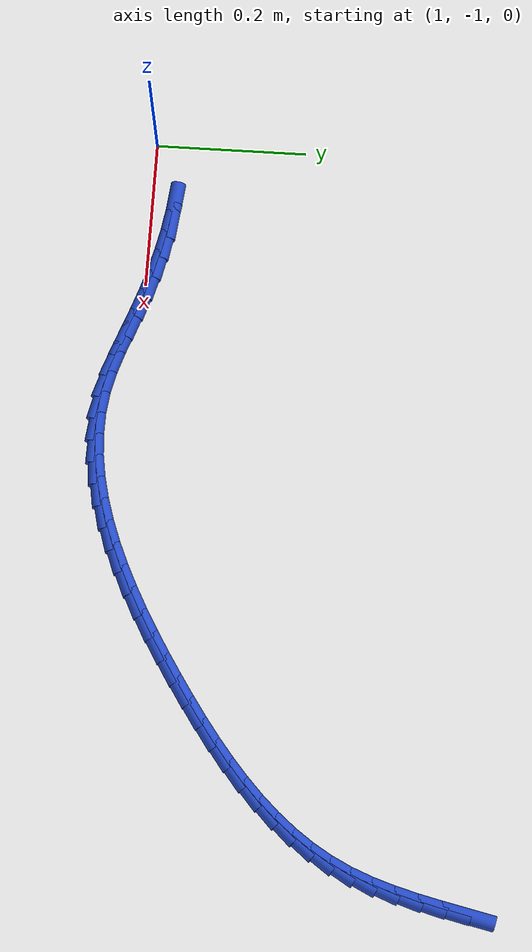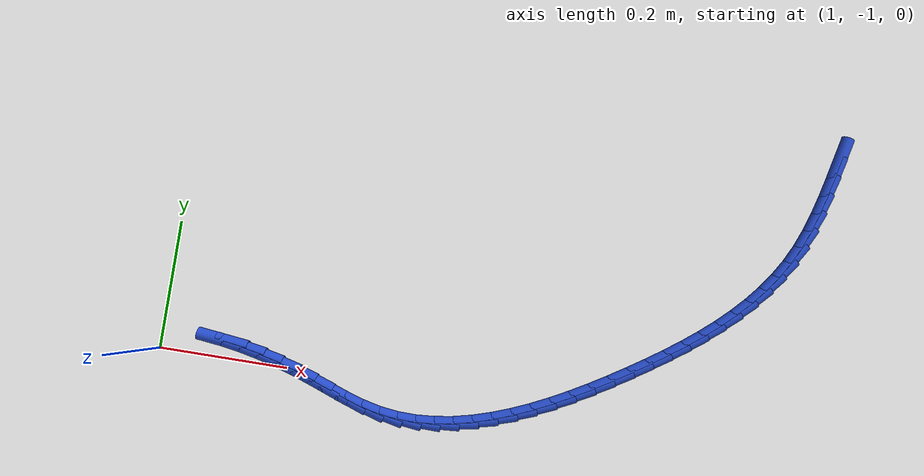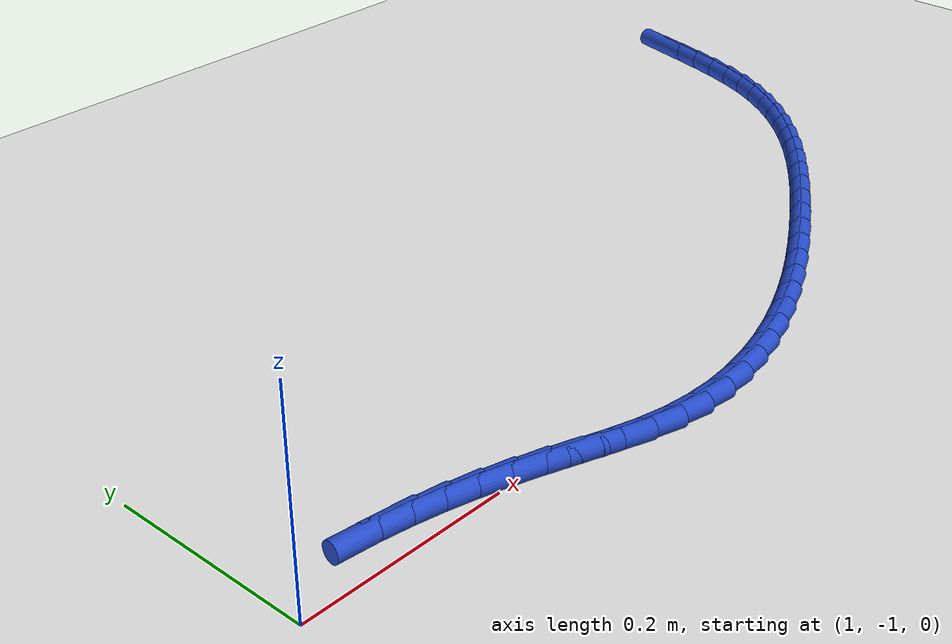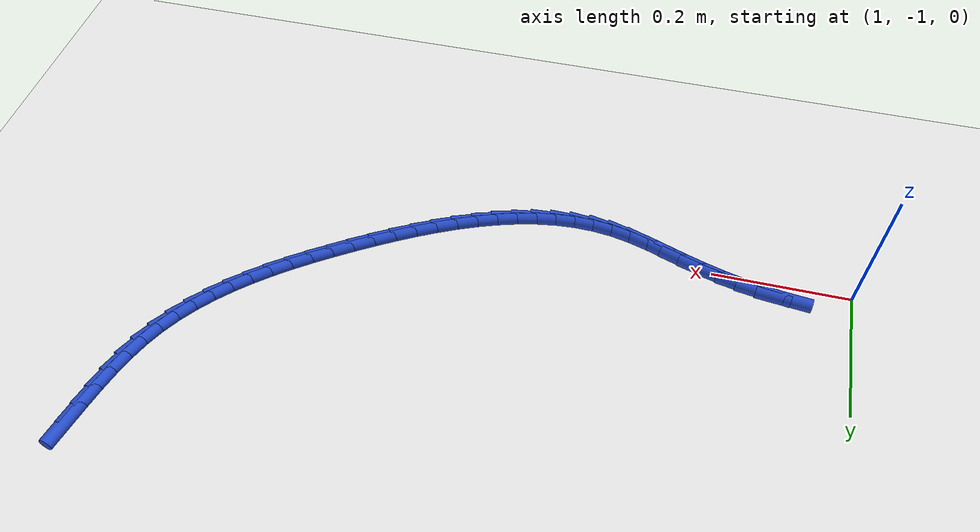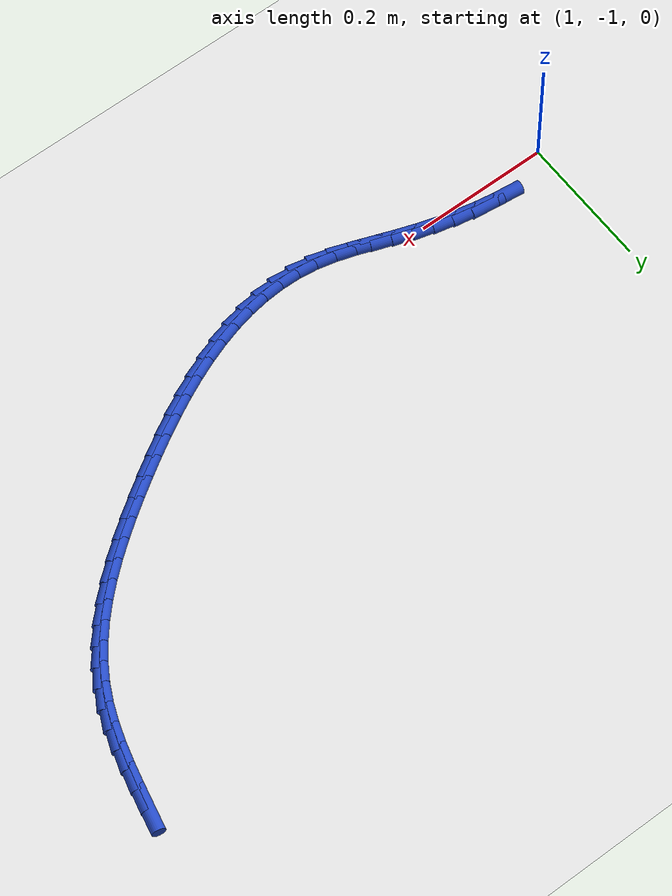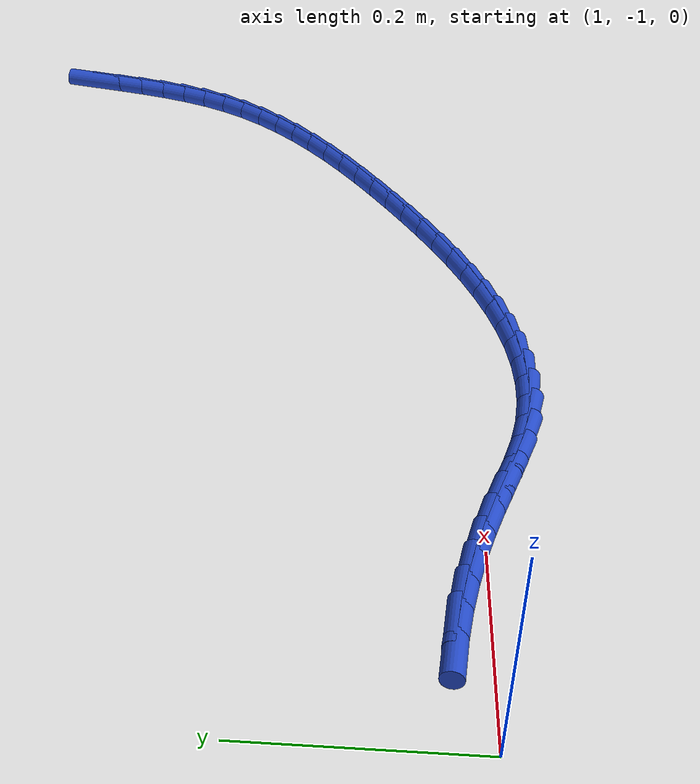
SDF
<sdf version="1.6">
 <world name="default">
  <model name="ground_plane">
   <static>1</static>
   <link name="link">
    <collision name="collision">
     <geometry><plane><normal>0 0 1</normal><size>100 100</size></plane></geometry>
     <surface><friction><ode><mu>100</mu><mu2>50</mu2></ode></friction></surface>
    </collision>
    <visual name="visual">
     <cast_shadows>0</cast_shadows>
     <geometry><plane><normal>0 0 1</normal><size>100 100</size></plane></geometry>
     <material>
      <script><uri>file://media/materials/scripts/gazebo.material</uri><name>Gazebo/WhiteGlow</name></script>
     </material>
    </visual>
   </link>
  </model>
  <model name="line">
   <link name="link_133">
    <pose>1.996887302667056 -0.5473693368653982 0.01 0 1.57 1.3559249489781986</pose>
    <collision name="collision">
     <geometry><cylinder><radius>0.01</radius><length>0.08</length></cylinder></geometry>
    </collision>
    <visual name="visual">
     <material>
      <script><name>Gazebo/Blue</name><uri>file://media/materials/scripts/gazebo.material</uri></script>
     </material>
     <geometry><cylinder><radius>0.01</radius><length>0.08</length></cylinder></geometry>
    </visual>
   </link>
   <link name="link_134">
    <pose>1.9903786573698856 -0.5771926119201558 0.01 0 1.57 1.3390633746473133</pose>
    <collision name="collision">
     <geometry><cylinder><radius>0.01</radius><length>0.08</length></cylinder></geometry>
    </collision>
    <visual name="visual">
     <material>
      <script><name>Gazebo/Blue</name><uri>file://media/materials/scripts/gazebo.material</uri></script>
     </material>
     <geometry><cylinder><radius>0.01</radius><length>0.08</length></cylinder></geometry>
    </visual>
   </link>
   <link name="link_135">
    <pose>1.983433303426066 -0.606625561824973 0.01 0 1.57 1.307035948301139</pose>
    <collision name="collision">
     <geometry><cylinder><radius>0.01</radius><length>0.08</length></cylinder></geometry>
    </collision>
    <visual name="visual">
     <material>
      <script><name>Gazebo/Blue</name><uri>file://media/materials/scripts/gazebo.material</uri></script>
     </material>
     <geometry><cylinder><radius>0.01</radius><length>0.08</length></cylinder></geometry>
    </visual>
   </link>
   <link name="link_136">
    <pose>1.9756438268588636 -0.6354699109005674 0.01 0 1.57 1.2590700978278235</pose>
    <collision name="collision">
     <geometry><cylinder><radius>0.01</radius><length>0.08</length></cylinder></geometry>
    </collision>
    <visual name="visual">
     <material>
      <script><name>Gazebo/Blue</name><uri>file://media/materials/scripts/gazebo.material</uri></script>
     </material>
     <geometry><cylinder><radius>0.01</radius><length>0.08</length></cylinder></geometry>
    </visual>
   </link>
   <link name="link_137">
    <pose>1.9666028136915439 -0.6635273834676595 0.01 0 1.57 1.194403321142609</pose>
    <collision name="collision">
     <geometry><cylinder><radius>0.01</radius><length>0.08</length></cylinder></geometry>
    </collision>
    <visual name="visual">
     <material>
      <script><name>Gazebo/Blue</name><uri>file://media/materials/scripts/gazebo.material</uri></script>
     </material>
     <geometry><cylinder><radius>0.01</radius><length>0.08</length></cylinder></geometry>
    </visual>
   </link>
   <link name="link_138">
    <pose>1.9559028499473745 -0.6905997038469692 0.01 0 1.57 1.1131258627821745</pose>
    <collision name="collision">
     <geometry><cylinder><radius>0.01</radius><length>0.08</length></cylinder></geometry>
    </collision>
    <visual name="visual">
     <material>
      <script><name>Gazebo/Blue</name><uri>file://media/materials/scripts/gazebo.material</uri></script>
     </material>
     <geometry><cylinder><radius>0.01</radius><length>0.08</length></cylinder></geometry>
    </visual>
   </link>
   <link name="link_139">
    <pose>1.9431483448114946 -0.7164945082401075 0.01 0 1.57 1.0265444536064772</pose>
    <collision name="collision">
     <geometry><cylinder><radius>0.01</radius><length>0.08</length></cylinder></geometry>
    </collision>
    <visual name="visual">
     <material>
      <script><name>Gazebo/Blue</name><uri>file://media/materials/scripts/gazebo.material</uri></script>
     </material>
     <geometry><cylinder><radius>0.01</radius><length>0.08</length></cylinder></geometry>
    </visual>
   </link>
   <link name="link_140">
    <pose>1.9282212717046536 -0.7411582220083184 0.01 0 1.57 0.9466905149157577</pose>
    <collision name="collision">
     <geometry><cylinder><radius>0.01</radius><length>0.08</length></cylinder></geometry>
    </collision>
    <visual name="visual">
     <material>
      <script><name>Gazebo/Blue</name><uri>file://media/materials/scripts/gazebo.material</uri></script>
     </material>
     <geometry><cylinder><radius>0.01</radius><length>0.08</length></cylinder></geometry>
    </visual>
   </link>
   <link name="link_141">
    <pose>1.9112843334248817 -0.7646776423236122 0.01 0 1.57 0.8747937491677347</pose>
    <collision name="collision">
     <geometry><cylinder><radius>0.01</radius><length>0.08</length></cylinder></geometry>
    </collision>
    <visual name="visual">
     <material>
      <script><name>Gazebo/Blue</name><uri>file://media/materials/scripts/gazebo.material</uri></script>
     </material>
     <geometry><cylinder><radius>0.01</radius><length>0.08</length></cylinder></geometry>
    </visual>
   </link>
   <link name="link_142">
    <pose>1.892512688985931 -0.7871457947818775 0.01 0 1.57 0.8111123387554712</pose>
    <collision name="collision">
     <geometry><cylinder><radius>0.01</radius><length>0.08</length></cylinder></geometry>
    </collision>
    <visual name="visual">
     <material>
      <script><name>Gazebo/Blue</name><uri>file://media/materials/scripts/gazebo.material</uri></script>
     </material>
     <geometry><cylinder><radius>0.01</radius><length>0.08</length></cylinder></geometry>
    </visual>
   </link>
   <link name="link_143">
    <pose>1.872081497401553 -0.8086557049790024 0.01 0 1.57 0.7555461781573906</pose>
    <collision name="collision">
     <geometry><cylinder><radius>0.01</radius><length>0.08</length></cylinder></geometry>
    </collision>
    <visual name="visual">
     <material>
      <script><name>Gazebo/Blue</name><uri>file://media/materials/scripts/gazebo.material</uri></script>
     </material>
     <geometry><cylinder><radius>0.01</radius><length>0.08</length></cylinder></geometry>
    </visual>
   </link>
   <link name="link_144">
    <pose>1.8501659176855019 -0.8293003985108759 0.01 0 1.57 0.7077698907338495</pose>
    <collision name="collision">
     <geometry><cylinder><radius>0.01</radius><length>0.08</length></cylinder></geometry>
    </collision>
    <visual name="visual">
     <material>
      <script><name>Gazebo/Blue</name><uri>file://media/materials/scripts/gazebo.material</uri></script>
     </material>
     <geometry><cylinder><radius>0.01</radius><length>0.08</length></cylinder></geometry>
    </visual>
   </link>
   <link name="link_145">
    <pose>1.8269411088515302 -0.849172900973385 0.01 0 1.57 0.6673439501519992</pose>
    <collision name="collision">
     <geometry><cylinder><radius>0.01</radius><length>0.08</length></cylinder></geometry>
    </collision>
    <visual name="visual">
     <material>
      <script><name>Gazebo/Blue</name><uri>file://media/materials/scripts/gazebo.material</uri></script>
     </material>
     <geometry><cylinder><radius>0.01</radius><length>0.08</length></cylinder></geometry>
    </visual>
   </link>
   <link name="link_146">
    <pose>1.8025822299133905 -0.868366237962419 0.01 0 1.57 0.6337964358311029</pose>
    <collision name="collision">
     <geometry><cylinder><radius>0.01</radius><length>0.08</length></cylinder></geometry>
    </collision>
    <visual name="visual">
     <material>
      <script><name>Gazebo/Blue</name><uri>file://media/materials/scripts/gazebo.material</uri></script>
     </material>
     <geometry><cylinder><radius>0.01</radius><length>0.08</length></cylinder></geometry>
    </visual>
   </link>
   <link name="link_147">
    <pose>1.7772644398848347 -0.8869734350738653 0.01 0 1.57 0.606677740603329</pose>
    <collision name="collision">
     <geometry><cylinder><radius>0.01</radius><length>0.08</length></cylinder></geometry>
    </collision>
    <visual name="visual">
     <material>
      <script><name>Gazebo/Blue</name><uri>file://media/materials/scripts/gazebo.material</uri></script>
     </material>
     <geometry><cylinder><radius>0.01</radius><length>0.08</length></cylinder></geometry>
    </visual>
   </link>
   <link name="link_148">
    <pose>1.751162897779616 -0.905087517903613 0.01 0 1.57 0.585589226687748</pose>
    <collision name="collision">
     <geometry><cylinder><radius>0.01</radius><length>0.08</length></cylinder></geometry>
    </collision>
    <visual name="visual">
     <material>
      <script><name>Gazebo/Blue</name><uri>file://media/materials/scripts/gazebo.material</uri></script>
     </material>
     <geometry><cylinder><radius>0.01</radius><length>0.08</length></cylinder></geometry>
    </visual>
   </link>
   <link name="link_149">
    <pose>1.7244526977620882 -0.9228013558451146 0.01 0 1.57 0.5677064494471903</pose>
    <collision name="collision">
     <geometry><cylinder><radius>0.01</radius><length>0.08</length></cylinder></geometry>
    </collision>
    <visual name="visual">
     <material>
      <script><name>Gazebo/Blue</name><uri>file://media/materials/scripts/gazebo.material</uri></script>
     </material>
     <geometry><cylinder><radius>0.01</radius><length>0.08</length></cylinder></geometry>
    </visual>
   </link>
   <link name="link_150">
    <pose>1.697277465241202 -0.9401320196519082 0.01 0 1.57 0.5462620800932706</pose>
    <collision name="collision">
     <geometry><cylinder><radius>0.01</radius><length>0.08</length></cylinder></geometry>
    </collision>
    <visual name="visual">
     <material>
      <script><name>Gazebo/Blue</name><uri>file://media/materials/scripts/gazebo.material</uri></script>
     </material>
     <geometry><cylinder><radius>0.01</radius><length>0.08</length></cylinder></geometry>
    </visual>
   </link>
   <link name="link_151">
    <pose>1.6696988412418157 -0.9568991046855543 0.01 0 1.57 0.519936955312195</pose>
    <collision name="collision">
     <geometry><cylinder><radius>0.01</radius><length>0.08</length></cylinder></geometry>
    </collision>
    <visual name="visual">
     <material>
      <script><name>Gazebo/Blue</name><uri>file://media/materials/scripts/gazebo.material</uri></script>
     </material>
     <geometry><cylinder><radius>0.01</radius><length>0.08</length></cylinder></geometry>
    </visual>
   </link>
   <link name="link_152">
    <pose>1.6417652846896187 -0.9728904546486943 0.01 0 1.57 0.48835998106023915</pose>
    <collision name="collision">
     <geometry><cylinder><radius>0.01</radius><length>0.08</length></cylinder></geometry>
    </collision>
    <visual name="visual">
     <material>
      <script><name>Gazebo/Blue</name><uri>file://media/materials/scripts/gazebo.material</uri></script>
     </material>
     <geometry><cylinder><radius>0.01</radius><length>0.08</length></cylinder></geometry>
    </visual>
   </link>
   <link name="link_153">
    <pose>1.6135252545103007 -0.987893913243971 0.01 0 1.57 0.4510602892768816</pose>
    <collision name="collision">
     <geometry><cylinder><radius>0.01</radius><length>0.08</length></cylinder></geometry>
    </collision>
    <visual name="visual">
     <material>
      <script><name>Gazebo/Blue</name><uri>file://media/materials/scripts/gazebo.material</uri></script>
     </material>
     <geometry><cylinder><radius>0.01</radius><length>0.08</length></cylinder></geometry>
    </visual>
   </link>
   <link name="link_154">
    <pose>1.5850272096295535 -1.0016973241740257 0.01 0 1.57 0.4074771541028114</pose>
    <collision name="collision">
     <geometry><cylinder><radius>0.01</radius><length>0.08</length></cylinder></geometry>
    </collision>
    <visual name="visual">
     <material>
      <script><name>Gazebo/Blue</name><uri>file://media/materials/scripts/gazebo.material</uri></script>
     </material>
     <geometry><cylinder><radius>0.01</radius><length>0.08</length></cylinder></geometry>
    </visual>
   </link>
   <link name="link_155">
    <pose>1.5563196089730666 -1.014088531141501 0.01 0 1.57 0.356980287970295</pose>
    <collision name="collision">
     <geometry><cylinder><radius>0.01</radius><length>0.08</length></cylinder></geometry>
    </collision>
    <visual name="visual">
     <material>
      <script><name>Gazebo/Blue</name><uri>file://media/materials/scripts/gazebo.material</uri></script>
     </material>
     <geometry><cylinder><radius>0.01</radius><length>0.08</length></cylinder></geometry>
    </visual>
   </link>
   <link name="link_156">
    <pose>1.5274509114665307 -1.0248553778490388 0.01 0 1.57 0.2989085290461588</pose>
    <collision name="collision">
     <geometry><cylinder><radius>0.01</radius><length>0.08</length></cylinder></geometry>
    </collision>
    <visual name="visual">
     <material>
      <script><name>Gazebo/Blue</name><uri>file://media/materials/scripts/gazebo.material</uri></script>
     </material>
     <geometry><cylinder><radius>0.01</radius><length>0.08</length></cylinder></geometry>
    </visual>
   </link>
   <link name="link_157">
    <pose>1.4984695760356341 -1.0337857079992812 0.01 0 1.57 0.232637022624887</pose>
    <collision name="collision">
     <geometry><cylinder><radius>0.01</radius><length>0.08</length></cylinder></geometry>
    </collision>
    <visual name="visual">
     <material>
      <script><name>Gazebo/Blue</name><uri>file://media/materials/scripts/gazebo.material</uri></script>
     </material>
     <geometry><cylinder><radius>0.01</radius><length>0.08</length></cylinder></geometry>
    </visual>
   </link>
   <link name="link_158">
    <pose>1.4694240616060699 -1.04066736529487 0.01 0 1.57 0.1576831542497032</pose>
    <collision name="collision">
     <geometry><cylinder><radius>0.01</radius><length>0.08</length></cylinder></geometry>
    </collision>
    <visual name="visual">
     <material>
      <script><name>Gazebo/Blue</name><uri>file://media/materials/scripts/gazebo.material</uri></script>
     </material>
     <geometry><cylinder><radius>0.01</radius><length>0.08</length></cylinder></geometry>
    </visual>
   </link>
   <link name="link_159">
    <pose>1.4403628271035274 -1.0452881934384473 0.01 0 1.57 0.07385625444808881</pose>
    <collision name="collision">
     <geometry><cylinder><radius>0.01</radius><length>0.08</length></cylinder></geometry>
    </collision>
    <visual name="visual">
     <material>
      <script><name>Gazebo/Blue</name><uri>file://media/materials/scripts/gazebo.material</uri></script>
     </material>
     <geometry><cylinder><radius>0.01</radius><length>0.08</length></cylinder></geometry>
    </visual>
   </link>
   <link name="link_160">
    <pose>1.411334331453696 -1.0474360361326553 0.01 0 1.57 -0.01855915408750739</pose>
    <collision name="collision">
     <geometry><cylinder><radius>0.01</radius><length>0.08</length></cylinder></geometry>
    </collision>
    <visual name="visual">
     <material>
      <script><name>Gazebo/Blue</name><uri>file://media/materials/scripts/gazebo.material</uri></script>
     </material>
     <geometry><cylinder><radius>0.01</radius><length>0.08</length></cylinder></geometry>
    </visual>
   </link>
   <link name="link_161">
    <pose>1.3823870335822666 -1.0468987370801366 0.01 0 1.57 -0.11862427308953186</pose>
    <collision name="collision">
     <geometry><cylinder><radius>0.01</radius><length>0.08</length></cylinder></geometry>
    </collision>
    <visual name="visual">
     <material>
      <script><name>Gazebo/Blue</name><uri>file://media/materials/scripts/gazebo.material</uri></script>
     </material>
     <geometry><cylinder><radius>0.01</radius><length>0.08</length></cylinder></geometry>
    </visual>
   </link>
   <link name="link_162">
    <pose>1.3535693924149284 -1.0434641399835323 0.01 0 1.57 -0.22223095566495663</pose>
    <collision name="collision">
     <geometry><cylinder><radius>0.01</radius><length>0.08</length></cylinder></geometry>
    </collision>
    <visual name="visual">
     <material>
      <script><name>Gazebo/Blue</name><uri>file://media/materials/scripts/gazebo.material</uri></script>
     </material>
     <geometry><cylinder><radius>0.01</radius><length>0.08</length></cylinder></geometry>
    </visual>
   </link>
   <link name="link_163">
    <pose>1.3249247649866343 -1.036991510865512 0.01 0 1.57 -0.3023855387779818</pose>
    <collision name="collision">
     <geometry><cylinder><radius>0.01</radius><length>0.08</length></cylinder></geometry>
    </collision>
    <visual name="visual">
     <material>
      <script><name>Gazebo/Blue</name><uri>file://media/materials/scripts/gazebo.material</uri></script>
     </material>
     <geometry><cylinder><radius>0.01</radius><length>0.08</length></cylinder></geometry>
    </visual>
   </link>
   <link name="link_164">
    <pose>1.2964417856567387 -1.028106188690913 0.01 0 1.57 -0.3454173879654355</pose>
    <collision name="collision">
     <geometry><cylinder><radius>0.01</radius><length>0.08</length></cylinder></geometry>
    </collision>
    <visual name="visual">
     <material>
      <script><name>Gazebo/Blue</name><uri>file://media/materials/scripts/gazebo.material</uri></script>
     </material>
     <geometry><cylinder><radius>0.01</radius><length>0.08</length></cylinder></geometry>
    </visual>
   </link>
   <link name="link_165">
    <pose>1.2680758464304942 -1.0178988783398202 0.01 0 1.57 -0.3532374891330841</pose>
    <collision name="collision">
     <geometry><cylinder><radius>0.01</radius><length>0.08</length></cylinder></geometry>
    </collision>
    <visual name="visual">
     <material>
      <script><name>Gazebo/Blue</name><uri>file://media/materials/scripts/gazebo.material</uri></script>
     </material>
     <geometry><cylinder><radius>0.01</radius><length>0.08</length></cylinder></geometry>
    </visual>
   </link>
   <link name="link_166">
    <pose>1.2397818709826056 -1.0074668409389635 0.01 0 1.57 -0.3289850413335178</pose>
    <collision name="collision">
     <geometry><cylinder><radius>0.01</radius><length>0.08</length></cylinder></geometry>
    </collision>
    <visual name="visual">
     <material>
      <script><name>Gazebo/Blue</name><uri>file://media/materials/scripts/gazebo.material</uri></script>
     </material>
     <geometry><cylinder><radius>0.01</radius><length>0.08</length></cylinder></geometry>
    </visual>
   </link>
   <link name="link_167">
    <pose>1.2115128485636875 -0.9978160447656337 0.01 0 1.57 -0.29224477451894176</pose>
    <collision name="collision">
     <geometry><cylinder><radius>0.01</radius><length>0.08</length></cylinder></geometry>
    </collision>
    <visual name="visual">
     <material>
      <script><name>Gazebo/Blue</name><uri>file://media/materials/scripts/gazebo.material</uri></script>
     </material>
     <geometry><cylinder><radius>0.01</radius><length>0.08</length></cylinder></geometry>
    </visual>
   </link>
   <link name="link_168">
    <pose>1.1832079488155265 -0.9893002580590987 0.01 0 1.57 -0.2518857113241568</pose>
    <collision name="collision">
     <geometry><cylinder><radius>0.01</radius><length>0.08</length></cylinder></geometry>
    </collision>
    <visual name="visual">
     <material>
      <script><name>Gazebo/Blue</name><uri>file://media/materials/scripts/gazebo.material</uri></script>
     </material>
     <geometry><cylinder><radius>0.01</radius><length>0.08</length></cylinder></geometry>
    </visual>
   </link>
   <link name="link_169">
    <pose>1.154800329237426 -0.9819895131290034 0.01 0 1.57 -0.20818575874759526</pose>
    <collision name="collision">
     <geometry><cylinder><radius>0.01</radius><length>0.08</length></cylinder></geometry>
    </collision>
    <visual name="visual">
     <material>
      <script><name>Gazebo/Blue</name><uri>file://media/materials/scripts/gazebo.material</uri></script>
     </material>
     <geometry><cylinder><radius>0.01</radius><length>0.08</length></cylinder></geometry>
    </visual>
   </link>
   <link name="link_170">
    <pose>1.126223122655557 -0.975952677865806 0.01 0 1.57 -0.16149214979157145</pose>
    <collision name="collision">
     <geometry><cylinder><radius>0.01</radius><length>0.08</length></cylinder></geometry>
    </collision>
    <visual name="visual">
     <material>
      <script><name>Gazebo/Blue</name><uri>file://media/materials/scripts/gazebo.material</uri></script>
     </material>
     <geometry><cylinder><radius>0.01</radius><length>0.08</length></cylinder></geometry>
    </visual>
   </link>
   <link name="link_171">
    <pose>1.097409461896092 -0.9712586201599649 0.01 0 1.57 -0.11225794270100851</pose>
    <collision name="collision">
     <geometry><cylinder><radius>0.01</radius><length>0.08</length></cylinder></geometry>
    </collision>
    <visual name="visual">
     <material>
      <script><name>Gazebo/Blue</name><uri>file://media/materials/scripts/gazebo.material</uri></script>
     </material>
     <geometry><cylinder><radius>0.01</radius><length>0.08</length></cylinder></geometry>
    </visual>
   </link>
  </model>
 </world>
</sdf>
